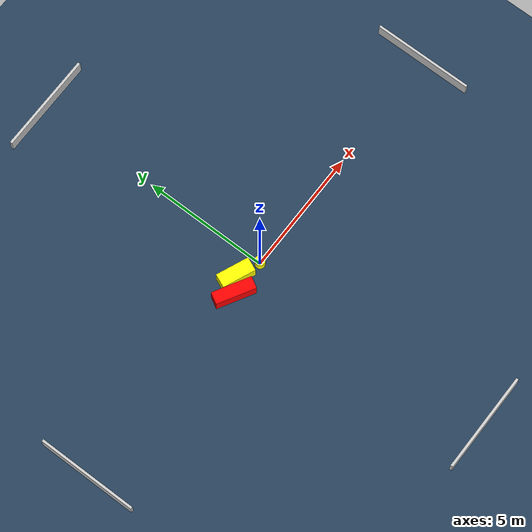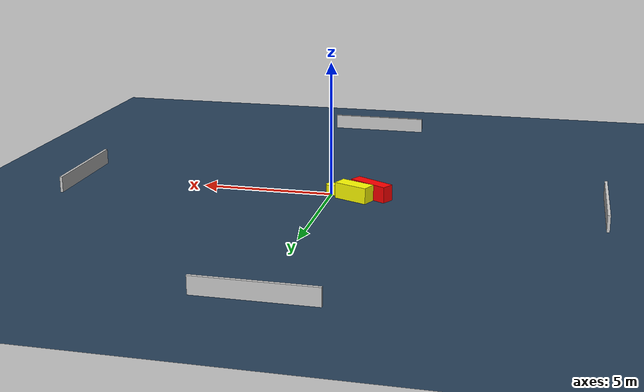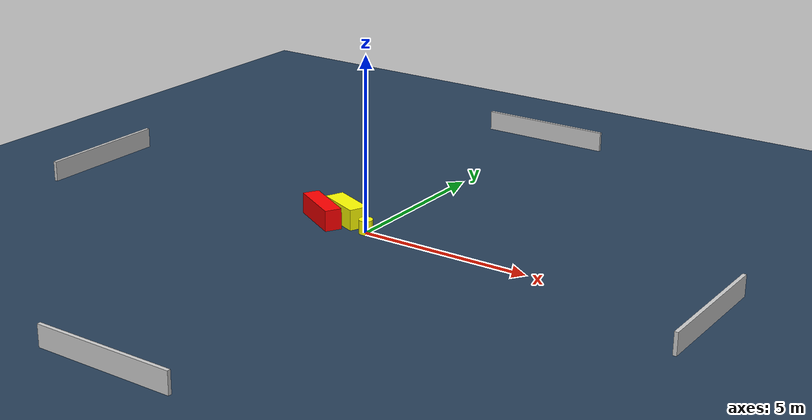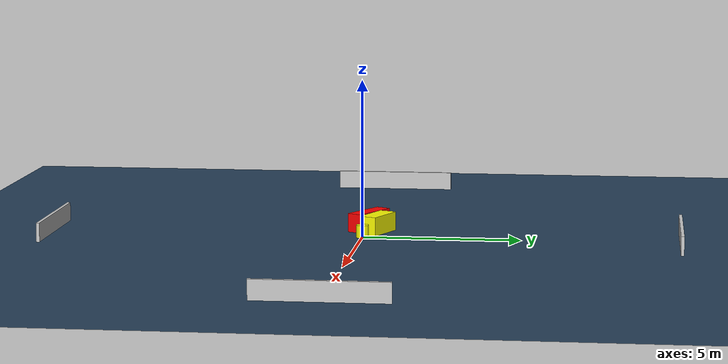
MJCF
<?xml version="1.0" ?>
<mujoco model="generated_environment">
  <option timestep="0.01" integrator="RK4" cone="elliptic"/>
  <default>
    <geom density="1"/>
  </default>
  <asset>
    <texture builtin="gradient" height="3072" name="skybox" rgb1="0.3 0.5 0.7" rgb2="0 0 0" type="skybox" width="512"/>
    <texture builtin="checker" height="300" name="groundplane" rgb1="0.2 0.3 0.4" rgb2="0.1 0.2 0.3" type="2d" width="300"/>
    <material name="groundplane" reflectance="0.2" texrepeat="5 5" texture="groundplane"/>
  </asset>
  <worldbody>
    <light dir="0 0 -1" directional="true" pos="0 0 1.5"/>
    <geom condim="3" friction="0.5 0.005 0.001" material="groundplane" name="floor" pos="0 0 0" size="0 0 0.05" type="plane"/>
    <body name="walls">
      <geom name="wall_1" condim="4" pos="-10.0 0.0 0.3" rgba="0.800000011920929 0.800000011920929 0.800000011920929 1.0" size="0.05 2.0 0.3" type="box"/>
      <geom name="wall_2" condim="4" pos="10.0 0.0 0.3" rgba="0.800000011920929 0.800000011920929 0.800000011920929 1.0" size="0.05 2.0 0.3" type="box"/>
      <geom name="wall_3" condim="4" pos="0.0 -10.0 0.3" rgba="0.800000011920929 0.800000011920929 0.800000011920929 1.0" size="2.0 0.05 0.3" type="box"/>
      <geom name="wall_4" condim="4" pos="0.0 10.0 0.3" rgba="0.800000011920929 0.800000011920929 0.800000011920929 1.0" size="2.0 0.05 0.3" type="box"/>
    </body>
    <body name="robot">
      <joint name="joint_x" type="slide" pos="0 0 0" axis="1 0 0"/>
      <joint name="joint_y" type="slide" pos="0 0 0" axis="0 1 0"/>
      <geom name="robot" type="cylinder" pos="0.0 0.0 0.2" size="0.2 0.2 0.0" mass="5.0" friction="1.0 0.005 0.0001" condim="4" rgba="1.0 1.0 0.0 1.0"/>
    </body>
    <body name="obstacle_1_movable">
      <geom name="obstacle_1_movable" condim="4" pos="-0.9400397111428066 0.3848196272858015 0.3" euler="0 0 336.886322166414" friction="0.0 0.005 0.001" rgba="1.0 1.0 0.0 1.0" size="0.6679062743474486 0.27753235968277584 0.3" type="box" mass="0.1"/>
      <joint type="free"/>
    </body>
    <body name="obstacle_2_static">
      <geom name="obstacle_2_static" condim="4" pos="-1.5189264327573453 0.02506762296016301 0.3" euler="0 0 330.2204723366025" friction="0.0 0.005 0.001" rgba="1.0 0.0 0.0 1.0" size="0.7941402722914315 0.24139314441451953 0.3" type="box"/>
    </body>
  </worldbody>
  <actuator>
    <motor name="actuator_x" joint="joint_x" gear="1" ctrlrange="-1 1"/>
    <motor name="actuator_y" joint="joint_y" gear="1" ctrlrange="-1 1"/>
  </actuator>
</mujoco>
